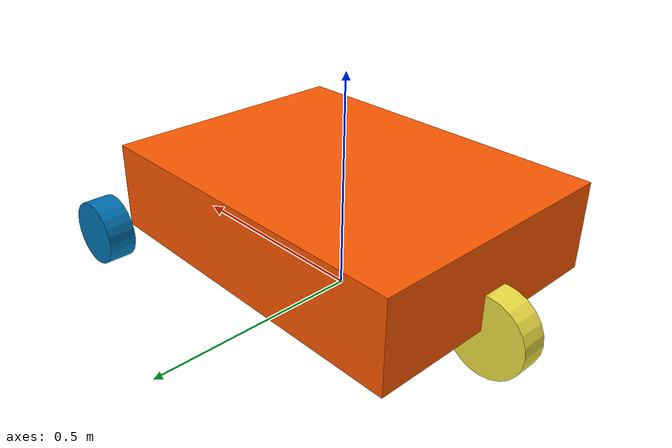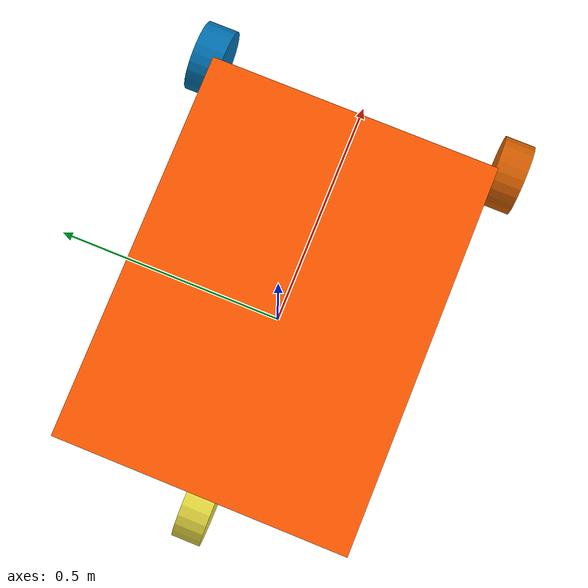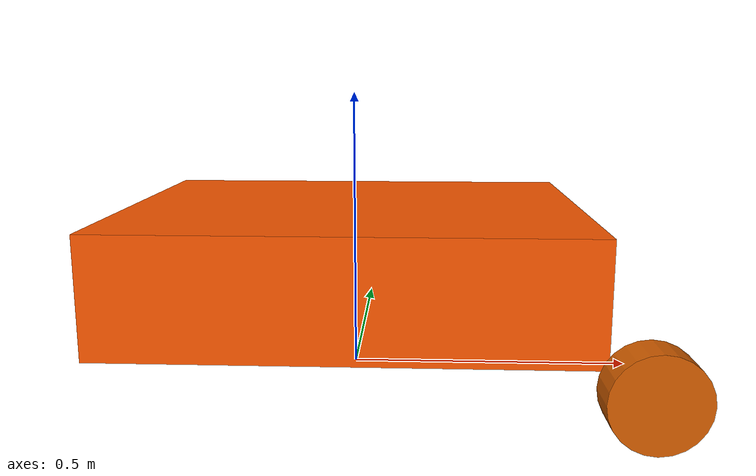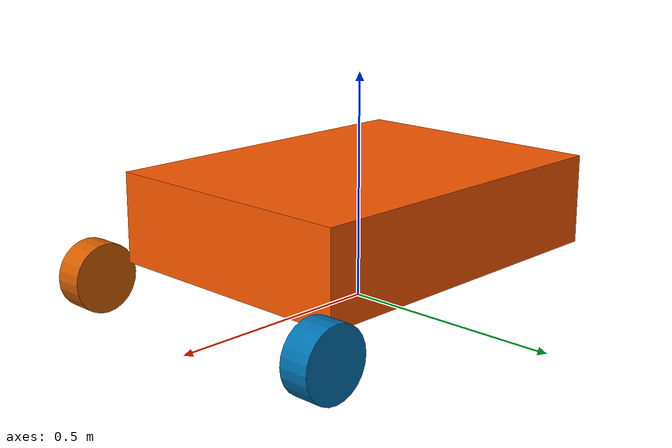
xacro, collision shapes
<?xml version="1.0"?>

<robot xmlns:xacro="http://www.ros.org/wiki/xacro" name="wms_robot">

  <!-- ROBOT PARAMETERS                                       -->

  <!-- Body / payload values are still placeholders until we enter
       the measured production mass and centre of gravity. -->
  <xacro:property name="base_length" value="0.80"/>
  <xacro:property name="base_width" value="0.60"/>
  <xacro:property name="base_height" value="0.20"/>
  <xacro:property name="base_mass" value="50.0"/>

  <xacro:property name="front_drive_radius" value="0.090"/>
  <xacro:property name="front_drive_width" value="0.060"/>
  <xacro:property name="front_drive_mass" value="4.0"/>
  <xacro:property name="front_drive_x" value="-0.4075"/>
  <xacro:property name="front_drive_y" value="0.0"/>
  <xacro:property name="front_drive_z" value="-0.1100"/>

  <xacro:property name="rear_support_radius" value="0.0762"/>
  <xacro:property name="rear_support_width" value="0.065"/>
  <xacro:property name="rear_support_mass" value="1.0"/>
  <xacro:property name="rear_support_x" value="0.4575"/>
  <xacro:property name="rear_support_y" value="0.33775"/>
  <xacro:property name="rear_support_z" value="-0.1238"/>

  <xacro:property name="lidar_mass" value="0.2"/>
  <xacro:property name="imu_mass" value="0.05"/>

  <!-- BASE FOOTPRINT                                         -->

  <link name="base_footprint"/>

  <!-- BASE LINK / REAL STL                                   -->

  <link name="base_link">
    <visual>
      <!-- Keep the transform that correctly places the uploaded STL. -->
      <origin xyz="-0.7205 0.5220 0.6405" rpy="3.14159265359 0 0"/>
      <geometry>
        <mesh filename="package://wms_description/meshes/wms_amr.stl"
              scale="0.001 0.001 0.001"/>
      </geometry>
      <material name="amr_orange">
        <color rgba="1.0 0.35 0.0 1.0"/>
      </material>
    </visual>

    <!-- Keep a simple collision body for this step. We will fit the
         production collision footprint after the wheel model is verified. -->
    <collision>
      <geometry>
        <box size="${base_length} ${base_width} ${base_height}"/>
      </geometry>
    </collision>

    <inertial>
      <mass value="${base_mass}"/>
      <inertia
        ixx="1.67"
        ixy="0.0"
        ixz="0.0"
        iyy="2.83"
        iyz="0.0"
        izz="4.17"/>
    </inertial>
  </link>

  <joint name="base_footprint_joint" type="fixed">
    <parent link="base_footprint"/>
    <child link="base_link"/>
    <origin xyz="0 0 0.20" rpy="0 0 0"/>
  </joint>

  <!-- FRONT STEER / DRIVE MODULE                             -->
  <!-- Single powered wheel that steers around Z and rolls    -->
  <!-- around its axle. Visual is already contained in STL.   -->

  <link name="front_steering_link">
    <inertial>
      <mass value="0.5"/>
      <inertia ixx="0.001" ixy="0.0" ixz="0.0"
               iyy="0.001" iyz="0.0" izz="0.001"/>
    </inertial>
  </link>

  <joint name="front_steering_joint" type="continuous">
    <parent link="base_link"/>
    <child link="front_steering_link"/>
    <origin xyz="${front_drive_x} ${front_drive_y} ${front_drive_z}" rpy="0 0 0"/>
    <axis xyz="0 0 1"/>
    <dynamics damping="0.20" friction="0.05"/>
  </joint>

  <link name="front_drive_wheel_link">
    <collision>
      <geometry>
        <cylinder radius="${front_drive_radius}" length="${front_drive_width}"/>
      </geometry>
    </collision>
    <inertial>
      <mass value="${front_drive_mass}"/>
      <inertia ixx="0.010" ixy="0.0" ixz="0.0"
               iyy="0.010" iyz="0.0" izz="0.010"/>
    </inertial>
  </link>

  <joint name="front_drive_wheel_joint" type="continuous">
    <parent link="front_steering_link"/>
    <child link="front_drive_wheel_link"/>
    <origin xyz="0 0 0" rpy="1.57079632679 0 0"/>
    <axis xyz="0 0 1"/>
    <dynamics damping="0.02" friction="0.01"/>
  </joint>

  <!-- REAR LEFT SUPPORT WHEEL                                -->
  <!-- Passive support wheel; visual is already in STL.       -->

  <link name="rear_left_support_wheel_link">
    <collision>
      <geometry>
        <cylinder radius="${rear_support_radius}" length="${rear_support_width}"/>
      </geometry>
    </collision>
    <inertial>
      <mass value="${rear_support_mass}"/>
      <inertia ixx="0.003" ixy="0.0" ixz="0.0"
               iyy="0.003" iyz="0.0" izz="0.003"/>
    </inertial>
  </link>

  <joint name="rear_left_support_wheel_joint" type="continuous">
    <parent link="base_link"/>
    <child link="rear_left_support_wheel_link"/>
    <origin xyz="${rear_support_x} ${rear_support_y} ${rear_support_z}"
            rpy="1.57079632679 0 0"/>
    <axis xyz="0 0 1"/>
    <dynamics damping="0.02" friction="0.01"/>
  </joint>

  <!-- REAR RIGHT SUPPORT WHEEL                               -->
  <!-- Passive support wheel; visual is already in STL.       -->

  <link name="rear_right_support_wheel_link">
    <collision>
      <geometry>
        <cylinder radius="${rear_support_radius}" length="${rear_support_width}"/>
      </geometry>
    </collision>
    <inertial>
      <mass value="${rear_support_mass}"/>
      <inertia ixx="0.003" ixy="0.0" ixz="0.0"
               iyy="0.003" iyz="0.0" izz="0.003"/>
    </inertial>
  </link>

  <joint name="rear_right_support_wheel_joint" type="continuous">
    <parent link="base_link"/>
    <child link="rear_right_support_wheel_link"/>
    <origin xyz="${rear_support_x} -${rear_support_y} ${rear_support_z}"
            rpy="1.57079632679 0 0"/>
    <axis xyz="0 0 1"/>
    <dynamics damping="0.02" friction="0.01"/>
  </joint>

  <!-- LIDAR                                                  -->
  <!-- Invisible helper link; the STL already contains the    -->
  <!-- physical robot appearance.                             -->

  <link name="lidar_link">
    <inertial>
      <mass value="${lidar_mass}"/>
      <inertia ixx="0.0001" ixy="0.0" ixz="0.0"
               iyy="0.0001" iyz="0.0" izz="0.0001"/>
    </inertial>
  </link>

  <joint name="lidar_joint" type="fixed">
    <parent link="base_link"/>
    <child link="lidar_link"/>
    <origin xyz="0.20 0 0.75" rpy="0 0 0"/>
  </joint>

  <!-- IMU                                                    -->
  <!-- Invisible helper link.                                 -->

  <link name="imu_link">
    <inertial>
      <mass value="${imu_mass}"/>
      <inertia ixx="0.00001" ixy="0.0" ixz="0.0"
               iyy="0.00001" iyz="0.0" izz="0.00001"/>
    </inertial>
  </link>

  <joint name="imu_joint" type="fixed">
    <parent link="base_link"/>
    <child link="imu_link"/>
    <origin xyz="0 0 0.12" rpy="0 0 0"/>
  </joint>

  <!-- GAZEBO DISPLAY MATERIAL                                -->

  <gazebo reference="base_link">
    <material>Gazebo/Orange</material>
  </gazebo>

  <!-- GAZEBO JOINT STATE PUBLISHER                           -->

  <gazebo>
    <plugin filename="gz-sim-joint-state-publisher-system"
            name="gz::sim::systems::JointStatePublisher">
      <joint_name>front_steering_joint</joint_name>
      <joint_name>front_drive_wheel_joint</joint_name>
      <joint_name>rear_left_support_wheel_joint</joint_name>
      <joint_name>rear_right_support_wheel_joint</joint_name>
      <topic>/joint_states</topic>
    </plugin>
  </gazebo>

  <!-- GAZEBO FRONT STEERING POSITION CONTROLLER              -->

  <gazebo>
    <plugin filename="gz-sim-joint-position-controller-system"
            name="gz::sim::systems::JointPositionController">
      <joint_name>front_steering_joint</joint_name>
      <topic>/front_steering_cmd</topic>
      <p_gain>80.0</p_gain>
      <i_gain>0.0</i_gain>
      <d_gain>4.0</d_gain>
      <cmd_max>300.0</cmd_max>
      <cmd_min>-300.0</cmd_min>
    </plugin>
  </gazebo>

  <!-- GAZEBO FRONT DRIVE VELOCITY CONTROLLER                 -->
  <gazebo>
    <plugin filename="gz-sim-joint-controller-system"
            name="gz::sim::systems::JointController">
      <joint_name>front_drive_wheel_joint</joint_name>
      <topic>/front_drive_cmd</topic>
    </plugin>
  </gazebo>

  <!-- GAZEBO LIDAR SENSOR                                    -->

  <gazebo reference="lidar_link">
    <sensor name="lidar_sensor" type="gpu_lidar">
      <pose>0 0 0 0 0 0</pose>
      <topic>/scan</topic>
      <update_rate>10</update_rate>
      <always_on>true</always_on>
      <visualize>true</visualize>

      <lidar>
        <scan>
          <horizontal>
            <samples>720</samples>
            <resolution>1</resolution>
            <min_angle>-3.14159265</min_angle>
            <max_angle>3.14159265</max_angle>
          </horizontal>
        </scan>

        <range>
          <min>0.10</min>
          <max>10.0</max>
          <resolution>0.01</resolution>
        </range>
      </lidar>
    </sensor>
  </gazebo>

  <!-- GAZEBO IMU SENSOR                                      -->

  <gazebo reference="imu_link">
    <sensor name="imu_sensor" type="imu">
      <always_on>true</always_on>
      <update_rate>100</update_rate>
      <topic>/imu/data</topic>
      <visualize>false</visualize>
    </sensor>
  </gazebo>

</robot>
